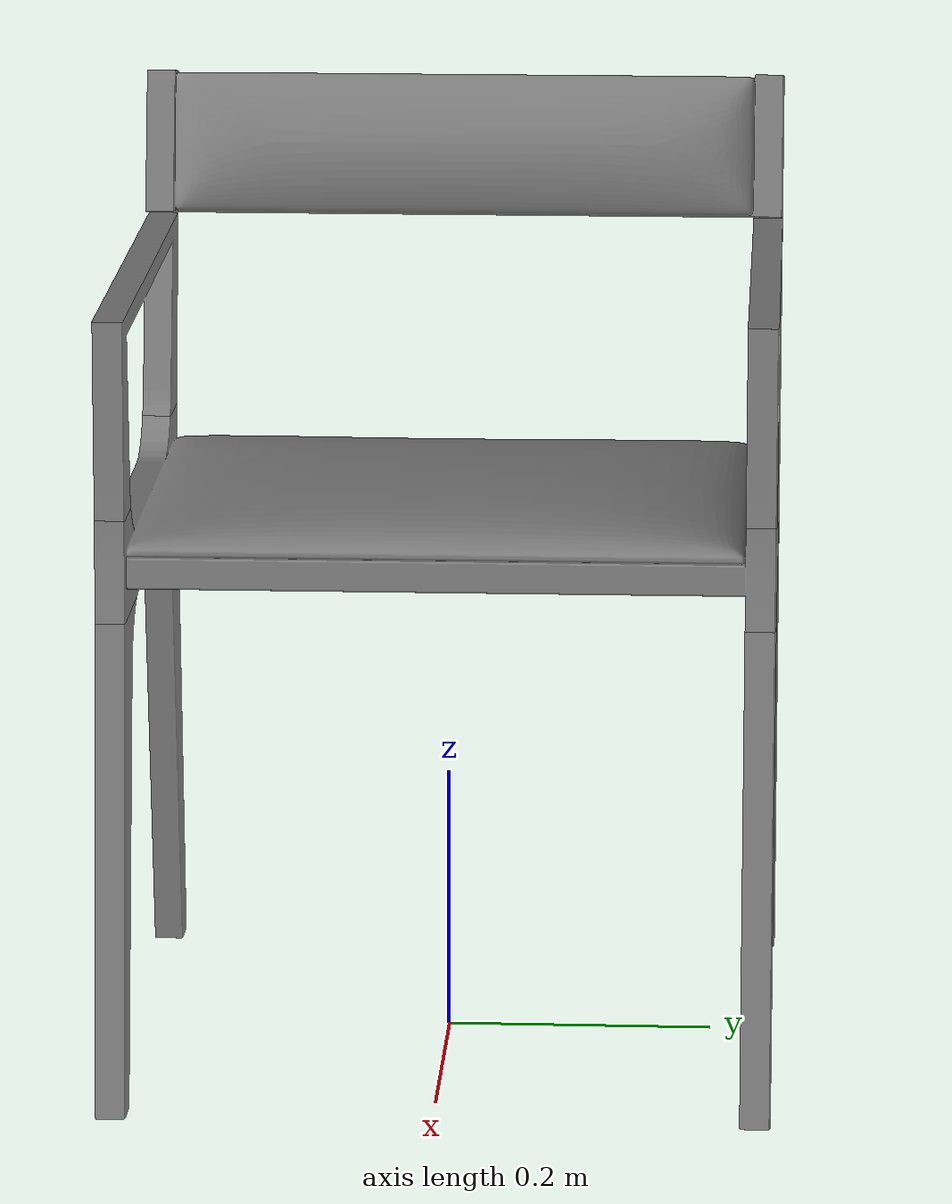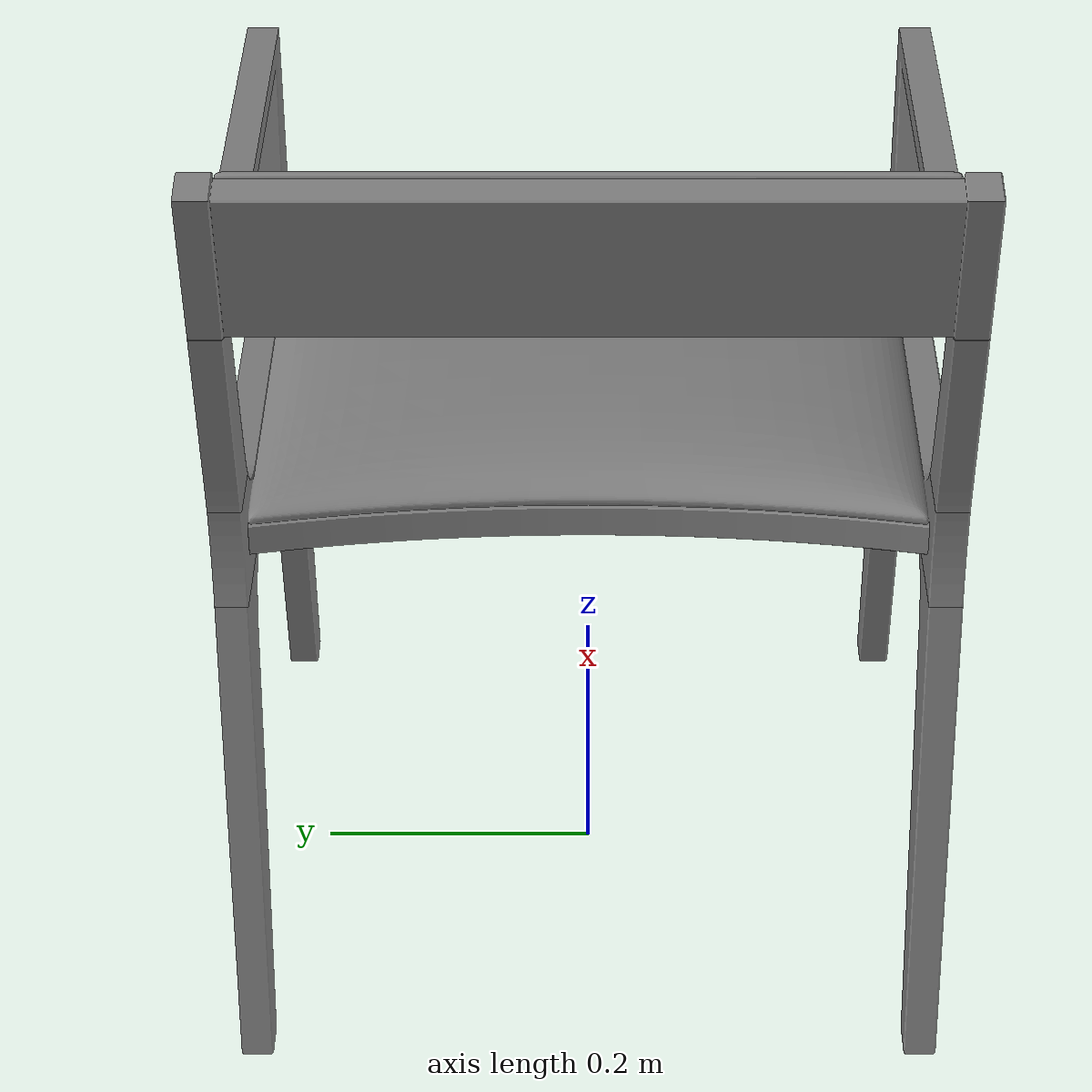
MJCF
<mujoco model="chair">
    <compiler angle="radian" meshdir="../meshes/" />
    <size njmax="500" nconmax="100" />
    <asset>
        <mesh name="back_support" file="back_support.stl" />
        <mesh name="chair" file="chair.stl" />
        <mesh name="left_handle" file="left_handle.stl" />
        <mesh name="right_handle" file="right_handle.stl" />
        <mesh name="leg_fl" file="leg_fl.stl" />
        <mesh name="leg_fr" file="leg_fr.stl" />
        <mesh name="leg_rl" file="leg_rl.stl" />
        <mesh name="leg_rr" file="leg_rr.stl" />
    </asset>
    <worldbody>
        <body name="base" pos="0 0 0">
            <!-- The second geom tag each time is the collision one -->
            <geom type="mesh" contype="0" conaffinity="0" group="1" mesh="back_support" />
            <geom type="mesh" mesh="back_support" />
            <geom type="mesh" contype="0" conaffinity="0" group="1" mesh="chair" />
            <geom type="mesh" mesh="chair" />
            <geom type="mesh" contype="0" conaffinity="0" group="1" mesh="left_handle" />
            <geom type="mesh" mesh="left_handle" />
            <geom type="mesh" contype="0" conaffinity="0" group="1" mesh="right_handle" />
            <geom type="mesh" mesh="right_handle" />
            <geom type="mesh" contype="0" conaffinity="0" group="1" mesh="leg_fl" />
            <geom type="mesh" mesh="leg_fl" />
            <geom type="mesh" contype="0" conaffinity="0" group="1" mesh="leg_fr" />
            <geom type="mesh" mesh="leg_fr" />
            <geom type="mesh" contype="0" conaffinity="0" group="1" mesh="leg_rl" />
            <geom type="mesh" mesh="leg_rl" />
            <geom type="mesh" contype="0" conaffinity="0" group="1" mesh="leg_rr" />
            <geom type="mesh" mesh="leg_rr" />
        </body>
    </worldbody>
</mujoco>
